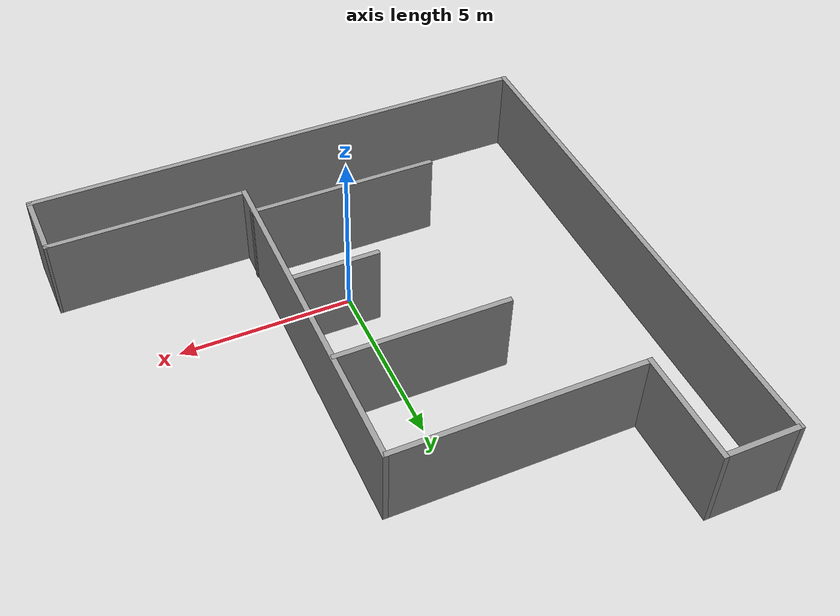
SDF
<?xml version='1.0'?>
<sdf version='1.7'>
  <model name='seinad'>
    <pose>0.185973 2.64403 0 0 -0 0</pose>
    <link name='Wall_0'>
      <collision name='Wall_0_Collision'>
        <geometry>
          <box>
            <size>15 0.15 2.5</size>
          </box>
        </geometry>
        <pose>0 0 1.25 0 -0 0</pose>
      </collision>
      <visual name='Wall_0_Visual'>
        <pose>0 0 1.25 0 -0 0</pose>
        <geometry>
          <box>
            <size>15 0.15 2.5</size>
          </box>
        </geometry>
        <material>
          <script>
            <uri>file://media/materials/scripts/gazebo.material</uri>
            <name>Gazebo/Grey</name>
          </script>
          <ambient>1 1 1 1</ambient>
        </material>
        <meta>
          <layer>0</layer>
        </meta>
      </visual>
      <pose>-0.000973 -7.42403 0 0 -0 0</pose>
    </link>
    <link name='Wall_11'>
      <collision name='Wall_11_Collision'>
        <geometry>
          <box>
            <size>5 0.15 2.5</size>
          </box>
        </geometry>
        <pose>0 0 1.25 0 -0 0</pose>
      </collision>
      <visual name='Wall_11_Visual'>
        <pose>0 0 1.25 0 -0 0</pose>
        <geometry>
          <box>
            <size>5 0.15 2.5</size>
          </box>
        </geometry>
        <material>
          <script>
            <uri>file://media/materials/scripts/gazebo.material</uri>
            <name>Gazebo/Grey</name>
          </script>
          <ambient>1 1 1 1</ambient>
        </material>
        <meta>
          <layer>0</layer>
        </meta>
      </visual>
      <pose>-0.689029 1.13614 0 0 -0 3.14159</pose>
    </link>
    <link name='Wall_13'>
      <collision name='Wall_13_Collision'>
        <geometry>
          <box>
            <size>5.5 0.15 2.5</size>
          </box>
        </geometry>
        <pose>0 0 1.25 0 -0 0</pose>
      </collision>
      <visual name='Wall_13_Visual'>
        <pose>0 0 1.25 0 -0 0</pose>
        <geometry>
          <box>
            <size>5.5 0.15 2.5</size>
          </box>
        </geometry>
        <material>
          <script>
            <uri>file://media/materials/scripts/gazebo.material</uri>
            <name>Gazebo/Grey</name>
          </script>
          <ambient>1 1 1 1</ambient>
        </material>
        <meta>
          <layer>0</layer>
        </meta>
      </visual>
      <pose>-0.868672 -4.66835 0 0 -0 3.14159</pose>
    </link>
    <link name='Wall_16'>
      <collision name='Wall_16_Collision'>
        <geometry>
          <box>
            <size>2.5 0.15 2.5</size>
          </box>
        </geometry>
        <pose>0 0 1.25 0 -0 0</pose>
      </collision>
      <visual name='Wall_16_Visual'>
        <pose>0 0 1.25 0 -0 0</pose>
        <geometry>
          <box>
            <size>2.5 0.15 2.5</size>
          </box>
        </geometry>
        <material>
          <script>
            <uri>file://media/materials/scripts/gazebo.material</uri>
            <name>Gazebo/Grey</name>
          </script>
          <ambient>1 1 1 1</ambient>
        </material>
        <meta>
          <layer>0</layer>
        </meta>
      </visual>
      <pose>0.490613 -1.81887 0 0 -0 3.14159</pose>
    </link>
    <link name='Wall_2'>
      <collision name='Wall_2_Collision'>
        <geometry>
          <box>
            <size>15 0.15 2.5</size>
          </box>
        </geometry>
        <pose>0 0 1.25 0 -0 0</pose>
      </collision>
      <visual name='Wall_2_Visual'>
        <pose>0 0 1.25 0 -0 0</pose>
        <geometry>
          <box>
            <size>15 0.15 2.5</size>
          </box>
        </geometry>
        <material>
          <script>
            <uri>file://media/materials/scripts/gazebo.material</uri>
            <name>Gazebo/Grey</name>
          </script>
          <ambient>1 1 1 1</ambient>
        </material>
        <meta>
          <layer>0</layer>
        </meta>
      </visual>
      <pose>-7.42597 0.000973 0 0 -0 1.5708</pose>
    </link>
    <link name='Wall_4'>
      <collision name='Wall_4_Collision'>
        <geometry>
          <box>
            <size>2.25 0.15 2.5</size>
          </box>
        </geometry>
        <pose>0 0 1.25 0 -0 0</pose>
      </collision>
      <visual name='Wall_4_Visual'>
        <pose>0 0 1.25 0 -0 0</pose>
        <geometry>
          <box>
            <size>2.25 0.15 2.5</size>
          </box>
        </geometry>
        <material>
          <script>
            <uri>file://media/materials/scripts/gazebo.material</uri>
            <name>Gazebo/Grey</name>
          </script>
          <ambient>1 1 1 1</ambient>
        </material>
        <meta>
          <layer>0</layer>
        </meta>
      </visual>
      <pose>-6.37597 7.42597 0 0 -0 0</pose>
    </link>
    <link name='Wall_5'>
      <collision name='Wall_5_Collision'>
        <geometry>
          <box>
            <size>3.25 0.15 2.5</size>
          </box>
        </geometry>
        <pose>0 0 1.25 0 -0 0</pose>
      </collision>
      <visual name='Wall_5_Visual'>
        <pose>0 0 1.25 0 -0 0</pose>
        <geometry>
          <box>
            <size>3.25 0.15 2.5</size>
          </box>
        </geometry>
        <material>
          <script>
            <uri>file://media/materials/scripts/gazebo.material</uri>
            <name>Gazebo/Grey</name>
          </script>
          <ambient>1 1 1 1</ambient>
        </material>
        <meta>
          <layer>0</layer>
        </meta>
      </visual>
      <pose>-5.32597 5.87597 0 0 -0 -1.5708</pose>
    </link>
    <link name='Wall_6'>
      <collision name='Wall_6_Collision'>
        <geometry>
          <box>
            <size>7.25 0.15 2.5</size>
          </box>
        </geometry>
        <pose>0 0 1.25 0 -0 0</pose>
      </collision>
      <visual name='Wall_6_Visual'>
        <pose>0 0 1.25 0 -0 0</pose>
        <geometry>
          <box>
            <size>7.25 0.15 2.5</size>
          </box>
        </geometry>
        <material>
          <script>
            <uri>file://media/materials/scripts/gazebo.material</uri>
            <name>Gazebo/Grey</name>
          </script>
          <ambient>1 1 1 1</ambient>
        </material>
        <meta>
          <layer>0</layer>
        </meta>
      </visual>
      <pose>-1.77597 4.32597 0 0 -0 0</pose>
    </link>
    <link name='Wall_7'>
      <collision name='Wall_7_Collision'>
        <geometry>
          <box>
            <size>10 0.15 2.5</size>
          </box>
        </geometry>
        <pose>0 0 1.25 0 -0 0</pose>
      </collision>
      <visual name='Wall_7_Visual'>
        <pose>0 0 1.25 0 -0 0</pose>
        <geometry>
          <box>
            <size>10 0.15 2.5</size>
          </box>
        </geometry>
        <material>
          <script>
            <uri>file://media/materials/scripts/gazebo.material</uri>
            <name>Gazebo/Grey</name>
          </script>
          <ambient>1 1 1 1</ambient>
        </material>
        <meta>
          <layer>0</layer>
        </meta>
      </visual>
      <pose>1.77403 -0.599027 0 0 -0 -1.5708</pose>
    </link>
    <link name='Wall_8'>
      <collision name='Wall_8_Collision'>
        <geometry>
          <box>
            <size>5.75 0.15 2.5</size>
          </box>
        </geometry>
        <pose>0 0 1.25 0 -0 0</pose>
      </collision>
      <visual name='Wall_8_Visual'>
        <pose>0 0 1.25 0 -0 0</pose>
        <geometry>
          <box>
            <size>5.75 0.15 2.5</size>
          </box>
        </geometry>
        <material>
          <script>
            <uri>file://media/materials/scripts/gazebo.material</uri>
            <name>Gazebo/Grey</name>
          </script>
          <ambient>1 1 1 1</ambient>
        </material>
        <meta>
          <layer>0</layer>
        </meta>
      </visual>
      <pose>4.57403 -5.52403 0 0 -0 0</pose>
    </link>
    <link name='Wall_9'>
      <collision name='Wall_9_Collision'>
        <geometry>
          <box>
            <size>2.05066 0.15 2.5</size>
          </box>
        </geometry>
        <pose>0 0 1.25 0 -0 0</pose>
      </collision>
      <visual name='Wall_9_Visual'>
        <pose>0 0 1.25 0 -0 0</pose>
        <geometry>
          <box>
            <size>2.05066 0.15 2.5</size>
          </box>
        </geometry>
        <material>
          <script>
            <uri>file://media/materials/scripts/gazebo.material</uri>
            <name>Gazebo/Grey</name>
          </script>
          <ambient>1 1 1 1</ambient>
        </material>
        <meta>
          <layer>0</layer>
        </meta>
      </visual>
      <pose>7.39903 -6.47403 0 0 -0 -1.54449</pose>
    </link>
    <static>1</static>
  </model>
</sdf>
